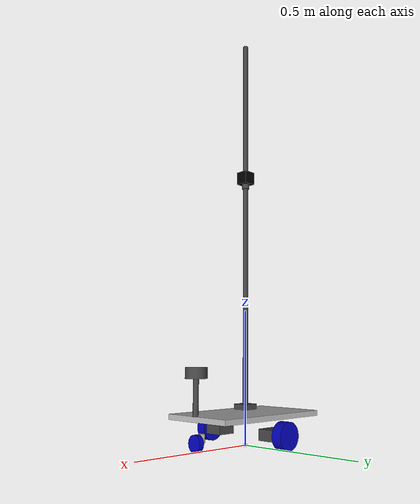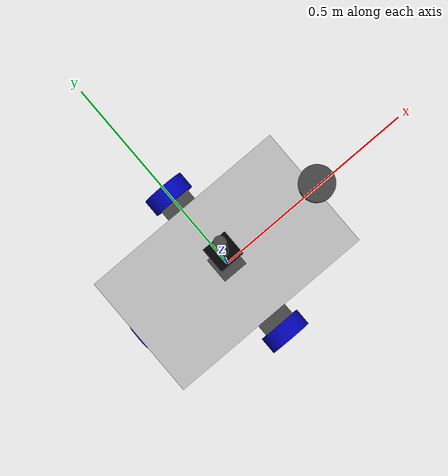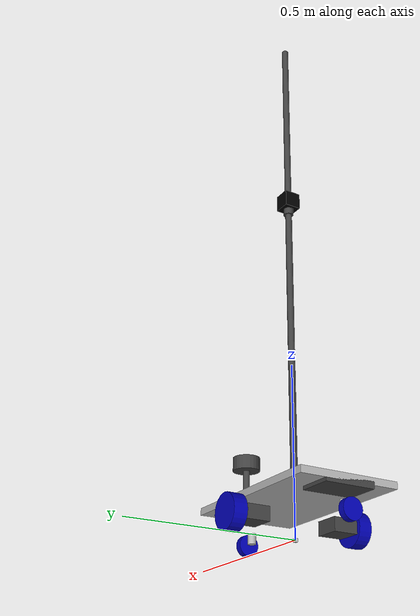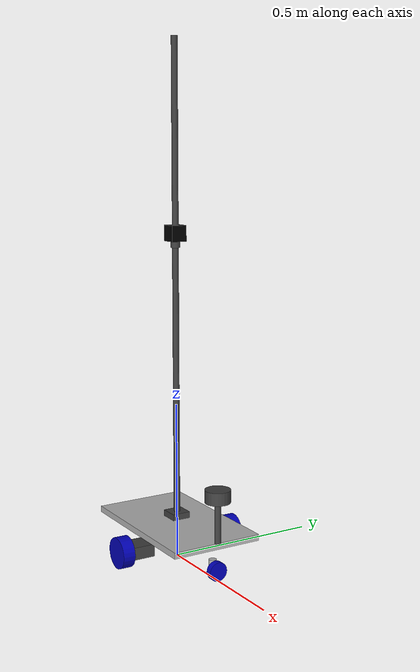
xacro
<?xml version="1.0" ?>
<robot name="scuttle" xmlns:xacro="http://www.ros.org/wiki/xacro">

<!-- Materials for URDF visualization -->
<material name="silver">
  <color rgba="0.700 0.700 0.700 1.000"/>
</material>

<material name="gray">
  <color rgba="0.250 0.250 0.250 1.000"/>
</material>

<material name="blue">
  <color rgba="0.000 0.000 0.700 1.000"/>
</material>

<material name="black">
  <color rgba="0.000 0.000 0.000 1.000"/>
</material>

<!-- Gazebo-specific materials using script references -->
<gazebo reference="base_link">
  <material>Gazebo/Grey</material>
  <mu1>0.2</mu1>
  <mu2>0.2</mu2>
  <gravity>true</gravity>
</gazebo>

<gazebo reference="chassis_link">
  <material>Gazebo/Grey</material>
  <mu1>0.2</mu1>
  <mu2>0.2</mu2>
</gazebo>

<gazebo reference="l_wheel">
  <material>Gazebo/Blue</material>
  <mu1>1.0</mu1>
  <mu2>1.0</mu2>
  <minDepth>0.005</minDepth>
  <kp>1000000.0</kp>
  <kd>100.0</kd>
</gazebo>

<gazebo reference="r_wheel">
  <material>Gazebo/Blue</material>
  <mu1>1.0</mu1>
  <mu2>1.0</mu2>
  <minDepth>0.005</minDepth>
  <kp>1000000.0</kp>
  <kd>100.0</kd>
</gazebo>

<gazebo reference="lidar_1">
  <material>Gazebo/DarkGrey</material>
  <mu1>0.2</mu1>
  <mu2>0.2</mu2>
</gazebo>

<gazebo reference="front_caster_swivel">
  <material>Gazebo/Grey</material>
  <mu1>0.5</mu1>
  <mu2>0.5</mu2>
</gazebo>

<gazebo reference="back_caster_swivel">
  <material>Gazebo/Grey</material>
  <mu1>0.5</mu1>
  <mu2>0.5</mu2>
</gazebo>

<gazebo reference="front_caster_wheel">
  <material>Gazebo/Blue</material>
  <mu1>0.2</mu1>
  <mu2>0.05</mu2>
  <minDepth>0.005</minDepth>
  <kp>1000000.0</kp>
  <kd>100.0</kd>
</gazebo>

<gazebo reference="back_caster_wheel">
  <material>Gazebo/Blue</material>
  <mu1>0.2</mu1>
  <mu2>0.05</mu2>
  <minDepth>0.005</minDepth>
  <kp>1000000.0</kp>
  <kd>100.0</kd>
</gazebo>

<gazebo reference="ballast_weight">
  <material>Gazebo/DarkGrey</material>
</gazebo>

<gazebo reference="lidar_mount">
  <material>Gazebo/DarkGrey</material>
</gazebo>

<gazebo reference="camera_mount_link">
  <material>Gazebo/DarkGrey</material>
</gazebo>

<gazebo reference="l_motor_mount">
  <material>Gazebo/DarkGrey</material>
</gazebo>

<gazebo reference="r_motor_mount">
  <material>Gazebo/DarkGrey</material>
</gazebo>

<gazebo reference="camera_stick_link">
  <material>Gazebo/DarkGrey</material>
</gazebo>

<gazebo reference="camera_slider_link">
  <material>Gazebo/DarkGrey</material>
</gazebo>

<gazebo reference="camera_link">
  <material>Gazebo/Black</material>
</gazebo>

<!-- Differential Drive Plugin for ROS2 -->
<gazebo>
  <plugin name="differential_drive_controller" filename="libgazebo_ros_diff_drive.so">
    <command_topic>cmd_vel</command_topic>
    <odometry_topic>odom</odometry_topic>
    <odometry_frame>odom</odometry_frame>
    <robot_base_frame>base_link</robot_base_frame>

    <update_rate>50</update_rate>
    <left_joint>l_wheel_joint</left_joint>
    <right_joint>r_wheel_joint</right_joint>

    <wheel_separation>0.395</wheel_separation>
    <wheel_diameter>0.10</wheel_diameter>

    <max_wheel_acceleration>1.0</max_wheel_acceleration>
    <max_wheel_torque>5.0</max_wheel_torque>

    <publish_odom>true</publish_odom>
    <publish_odom_tf>true</publish_odom_tf>
    <publish_wheel_tf>false</publish_wheel_tf>

    <!-- FIXED: Removed trailing space from "world " -->
    <odometry_source>world</odometry_source>
  </plugin>
</gazebo>

<!-- Joint State Publisher for ROS2 -->
<gazebo>
  <plugin name="joint_state_publisher" filename="libgazebo_ros_joint_state_publisher.so">
    <update_rate>50</update_rate>
    <joint_name>l_wheel_joint</joint_name>
    <joint_name>r_wheel_joint</joint_name>
    <joint_name>camera_slider_joint</joint_name>
  </plugin>
</gazebo>

<!-- Lidar Sensor for ROS2 -->
<gazebo reference="lidar_1">
  <sensor type="ray" name="rplidar_a1">
    <pose>0 0 0 0 0 0</pose>
    <visualize>true</visualize>
    <update_rate>5.5</update_rate>
    <ray>
      <scan>
        <horizontal>
          <samples>180</samples>
          <resolution>1</resolution>
          <min_angle>-1.5708</min_angle>
          <max_angle>1.5708</max_angle>
        </horizontal>
      </scan>
      <range>
        <min>0.15</min>
        <max>12.0</max>
        <resolution>0.005</resolution>
      </range>
      <noise>
        <type>gaussian</type>
        <mean>0.0</mean>
        <stddev>0.01</stddev>
      </noise>
    </ray>
    <plugin name="gazebo_ros_laser_controller" filename="libgazebo_ros_ray_sensor.so">
      <ros>
        <remapping>~/out:=scan</remapping>
      </ros>
      <frame_name>lidar_1</frame_name>
      <output_type>sensor_msgs/LaserScan</output_type>
    </plugin>
  </sensor>
</gazebo>

<!-- Camera for ROS2 -->
<gazebo reference="camera_link">
  <sensor type="camera" name="scuttle_camera">
    <always_on>1</always_on>
    <update_rate>30</update_rate>
    <visualize>false</visualize>

    <camera>
      <horizontal_fov>1.571</horizontal_fov>
      <image>
        <width>640</width>
        <height>480</height>
        <format>R8G8B8</format>
      </image>
      <clip>
        <near>0.05</near>
        <far>100.0</far>
      </clip>
    </camera>

    <plugin name="camera_controller" filename="libgazebo_ros_camera.so">
      <camera_name>camera</camera_name>
      <frame_name>camera_optical_frame</frame_name>
    </plugin>
  </sensor>
</gazebo>

<!-- Base link -->
<link name="base_link">
  <inertial>
    <origin rpy="0 0 0" xyz="0 0 0"/>
    <mass value="0.1"/>
    <inertia ixx="0.001" ixy="0.0" ixz="0.0"
             iyy="0.001" iyz="0.0"
             izz="0.001"/>
  </inertial>
  <visual>
    <origin rpy="0 0 0" xyz="0 0 0"/>
    <geometry>
      <box size="0.01 0.01 0.01"/>
    </geometry>
    <material name="silver"/>
  </visual>
</link>

<!-- Chassis -->
<joint name="chassis_joint" type="fixed">
  <origin rpy="0 0 0" xyz="0 0 0.11"/>
  <parent link="base_link"/>
  <child link="chassis_link"/>
</joint>

<link name="chassis_link">
  <inertial>
    <origin rpy="0 0 0" xyz="0 0 0"/>
    <mass value="2.0"/>
    <inertia ixx="0.0153" ixy="0.0" ixz="0.0"
             iyy="0.042" iyz="0.0"
             izz="0.0573"/>
  </inertial>
  <visual>
    <origin rpy="0 0 0" xyz="0 0 0"/>
    <geometry>
      <box size="0.50 0.30 0.02"/>
    </geometry>
    <material name="silver"/>
  </visual>
  <collision>
    <origin rpy="0 0 0" xyz="0 0 0"/>
    <geometry>
      <box size="0.50 0.30 0.02"/>
    </geometry>
  </collision>
</link>

<!-- Ballast weight -->
<joint name="ballast_joint" type="fixed">
  <origin rpy="0 0 0" xyz="-0.20 0 -0.01"/>
  <parent link="chassis_link"/>
  <child link="ballast_weight"/>
</joint>

<link name="ballast_weight">
  <inertial>
    <origin rpy="0 0 0" xyz="0 0 0"/>
    <mass value="0.05"/>
    <inertia ixx="0.00008" ixy="0.0" ixz="0.0"
             iyy="0.00013" iyz="0.0"
             izz="0.00008"/>
  </inertial>
  <visual>
    <origin rpy="0 0 0" xyz="0 0 0"/>
    <geometry>
      <box size="0.10 0.15 0.02"/>
    </geometry>
    <material name="gray"/>
  </visual>
  <collision>
    <origin rpy="0 0 0" xyz="0 0 0"/>
    <geometry>
      <box size="0.10 0.15 0.02"/>
    </geometry>
  </collision>
</link>

<!-- Camera base mount -->
<joint name="camera_mount_joint" type="fixed">
  <origin xyz="0 0 0.02" rpy="0 0 0"/>
  <parent link="chassis_link"/>
  <child link="camera_mount_link"/>
</joint>

<link name="camera_mount_link">
  <inertial>
    <origin xyz="0 0 0.01" rpy="0 0 0"/>
    <mass value="0.05"/>
    <inertia ixx="0.00002" ixy="0.0" ixz="0.0"
             iyy="0.00002" iyz="0.0"
             izz="0.00002"/>
  </inertial>
  <visual>
    <origin xyz="0 0 0.01" rpy="0 0 0"/>
    <geometry>
      <box size="0.06 0.06 0.02"/>
    </geometry>
    <material name="gray"/>
  </visual>
  <collision>
    <origin xyz="0 0 0.01" rpy="0 0 0"/>
    <geometry>
      <box size="0.06 0.06 0.02"/>
    </geometry>
  </collision>
</link>

<!-- Left motor mount -->
<joint name="l_motor_mount_joint" type="fixed">
  <origin rpy="0 0 0" xyz="0 0.1025 -0.06"/>
  <parent link="chassis_link"/>
  <child link="l_motor_mount"/>
</joint>

<link name="l_motor_mount">
  <inertial>
    <origin rpy="0 0 0" xyz="0 0.0375 0"/>
    <mass value="0.3"/>
    <inertia ixx="0.0001" ixy="0.0" ixz="0.0"
             iyy="0.00008" iyz="0.0"
             izz="0.00008"/>
  </inertial>
  <visual>
    <origin rpy="0 0 0" xyz="0 0.0375 0"/>
    <geometry>
      <box size="0.075 0.075 0.04"/>
    </geometry>
    <material name="gray"/>
  </visual>
  <collision>
    <origin rpy="0 0 0" xyz="0 0.0375 0"/>
    <geometry>
      <box size="0.075 0.075 0.04"/>
    </geometry>
  </collision>
</link>

<!-- Left wheel -->
<joint name="l_wheel_joint" type="continuous">
  <origin rpy="-1.5708 0 0" xyz="0 0.095 0"/>
  <parent link="l_motor_mount"/>
  <child link="l_wheel"/>
  <axis xyz="0 0 1"/>
  <dynamics damping="0.1" friction="0.1"/>
</joint>

<link name="l_wheel">
  <inertial>
    <origin rpy="0 0 0" xyz="0 0 0"/>
    <mass value="0.5"/>
    <inertia ixx="0.00125" ixy="0.0" ixz="0.0"
             iyy="0.00125" iyz="0.0"
             izz="0.00125"/>
  </inertial>
  <visual>
    <origin rpy="0 0 0" xyz="0 0 0"/>
    <geometry>
      <cylinder radius="0.05" length="0.04"/>
    </geometry>
    <material name="blue"/>
  </visual>
  <collision>
    <origin rpy="0 0 0" xyz="0 0 0"/>
    <geometry>
      <cylinder radius="0.05" length="0.04"/>
    </geometry>
  </collision>
</link>

<!-- Right motor mount -->
<joint name="r_motor_mount_joint" type="fixed">
  <origin rpy="0 0 0" xyz="0 -0.1025 -0.06"/>
  <parent link="chassis_link"/>
  <child link="r_motor_mount"/>
</joint>

<link name="r_motor_mount">
  <inertial>
    <origin rpy="0 0 0" xyz="0 -0.0375 0"/>
    <mass value="0.3"/>
    <inertia ixx="0.0001" ixy="0.0" ixz="0.0"
             iyy="0.00008" iyz="0.0"
             izz="0.00008"/>
  </inertial>
  <visual>
    <origin rpy="0 0 0" xyz="0 -0.0375 0"/>
    <geometry>
      <box size="0.075 0.075 0.04"/>
    </geometry>
    <material name="gray"/>
  </visual>
  <collision>
    <origin rpy="0 0 0" xyz="0 -0.0375 0"/>
    <geometry>
      <box size="0.075 0.075 0.04"/>
    </geometry>
  </collision>
</link>

<!-- Right wheel -->
<joint name="r_wheel_joint" type="continuous">
  <origin rpy="1.5708 0 0" xyz="0 -0.095 0"/>
  <parent link="r_motor_mount"/>
  <child link="r_wheel"/>
  <axis xyz="0 0 -1"/>
  <dynamics damping="0.1" friction="0.1"/>
</joint>

<link name="r_wheel">
  <inertial>
    <origin rpy="0 0 0" xyz="0 0 0"/>
    <mass value="0.5"/>
    <inertia ixx="0.00125" ixy="0.0" ixz="0.0"
             iyy="0.00125" iyz="0.0"
             izz="0.00125"/>
  </inertial>
  <visual>
    <origin rpy="0 0 0" xyz="0 0 0"/>
    <geometry>
      <cylinder radius="0.05" length="0.04"/>
    </geometry>
    <material name="blue"/>
  </visual>
  <collision>
    <origin rpy="0 0 0" xyz="0 0 0"/>
    <geometry>
      <cylinder radius="0.05" length="0.04"/>
    </geometry>
  </collision>
</link>

<!-- Front caster -->
<joint name="front_caster_swivel_joint" type="continuous">
  <origin rpy="0 0 0" xyz="0.22 0 -0.05"/>
  <parent link="chassis_link"/>
  <child link="front_caster_swivel"/>
  <axis xyz="0 0 1"/>
  <dynamics damping="0.01" friction="0.0"/>
</joint>

<link name="front_caster_swivel">
  <inertial>
    <origin rpy="0 0 0" xyz="0 0 -0.015"/>
    <mass value="0.05"/>
    <inertia ixx="1e-05" ixy="0.0" ixz="0.0"
             iyy="1.2e-05" iyz="0.0"
             izz="1e-05"/>
  </inertial>
  <visual>
    <origin rpy="0 0 0" xyz="0 0 -0.015"/>
    <geometry>
      <cylinder radius="0.012" length="0.03"/>
    </geometry>
    <material name="silver"/>
  </visual>
  <collision>
    <origin rpy="0 0 0" xyz="0 0 -0.015"/>
    <geometry>
      <cylinder radius="0.012" length="0.03"/>
    </geometry>
  </collision>
</link>

<joint name="front_caster_wheel_joint" type="continuous">
  <origin rpy="0 0 0" xyz="0.025 0 -0.03"/>
  <parent link="front_caster_swivel"/>
  <child link="front_caster_wheel"/>
  <axis xyz="0 1 0"/>
  <dynamics damping="0.01" friction="0.0"/>
</joint>

<link name="front_caster_wheel">
  <inertial>
    <origin rpy="0 0 0" xyz="0 0 0"/>
    <mass value="0.06"/>
    <inertia ixx="1.5e-05" ixy="0.0" ixz="0.0"
             iyy="9e-06" iyz="0.0"
             izz="9e-06"/>
  </inertial>
  <visual>
    <origin rpy="0 1.5708 0" xyz="0 0 0"/>
    <geometry>
      <cylinder radius="0.03" length="0.02"/>
    </geometry>
    <material name="blue"/>
  </visual>
  <collision>
    <origin rpy="0 1.5708 0" xyz="0 0 0"/>
    <geometry>
      <cylinder radius="0.03" length="0.02"/>
    </geometry>
  </collision>
</link>

<!-- Back caster -->
<joint name="back_caster_swivel_joint" type="continuous">
  <origin rpy="0 0 0" xyz="-0.22 0 -0.05"/>
  <parent link="chassis_link"/>
  <child link="back_caster_swivel"/>
  <axis xyz="0 0 1"/>
  <dynamics damping="0.01" friction="0.0"/>
</joint>

<link name="back_caster_swivel">
  <inertial>
    <origin rpy="0 0 0" xyz="0 0 -0.015"/>
    <mass value="0.05"/>
    <inertia ixx="1e-05" ixy="0.0" ixz="0.0"
             iyy="1.2e-05" iyz="0.0"
             izz="1e-05"/>
  </inertial>
  <visual>
    <origin rpy="0 0 0" xyz="0 0 -0.015"/>
    <geometry>
      <cylinder radius="0.012" length="0.03"/>
    </geometry>
    <material name="silver"/>
  </visual>
  <collision>
    <origin rpy="0 0 0" xyz="0 0 -0.015"/>
    <geometry>
      <cylinder radius="0.012" length="0.03"/>
    </geometry>
  </collision>
</link>

<joint name="back_caster_wheel_joint" type="continuous">
  <origin rpy="0 0 0" xyz="-0.025 0 -0.03"/>
  <parent link="back_caster_swivel"/>
  <child link="back_caster_wheel"/>
  <axis xyz="0 1 0"/>
  <dynamics damping="0.01" friction="0.0"/>
</joint>

<link name="back_caster_wheel">
  <inertial>
    <origin rpy="0 0 0" xyz="0 0 0"/>
    <mass value="0.06"/>
    <inertia ixx="1.5e-05" ixy="0.0" ixz="0.0"
             iyy="9e-06" iyz="0.0"
             izz="9e-06"/>
  </inertial>
  <visual>
    <origin rpy="0 1.5708 0" xyz="0 0 0"/>
    <geometry>
      <cylinder radius="0.03" length="0.02"/>
    </geometry>
    <material name="blue"/>
  </visual>
  <collision>
    <origin rpy="0 1.5708 0" xyz="0 0 0"/>
    <geometry>
      <cylinder radius="0.03" length="0.02"/>
    </geometry>
  </collision>
</link>

<!-- Lidar mount -->
<joint name="lidar_mount_joint" type="fixed">
  <origin rpy="0 0 0" xyz="0.25 0 0.01"/>
  <parent link="chassis_link"/>
  <child link="lidar_mount"/>
</joint>

<link name="lidar_mount">
  <inertial>
    <origin rpy="0 0 0" xyz="0 0 0.065"/>
    <mass value="0.08"/>
    <inertia ixx="0.00012" ixy="0.0" ixz="0.0"
             iyy="0.00012" iyz="0.0"
             izz="0.00001"/>
  </inertial>
  <visual>
    <origin rpy="0 0 0" xyz="0 0 0.065"/>
    <geometry>
      <cylinder radius="0.01" length="0.13"/>
    </geometry>
    <material name="gray"/>
  </visual>
  <collision>
    <origin rpy="0 0 0" xyz="0 0 0.065"/>
    <geometry>
      <cylinder radius="0.01" length="0.13"/>
    </geometry>
  </collision>
</link>

<joint name="lidar_joint" type="fixed">
  <origin rpy="0 0 0" xyz="0 0 0.13"/>
  <parent link="lidar_mount"/>
  <child link="lidar_1"/>
</joint>

<link name="lidar_1">
  <inertial>
    <origin rpy="0 0 0" xyz="0 0 0.02"/>
    <mass value="0.073"/>
    <inertia ixx="2.5e-05" ixy="0.0" ixz="0.0"
             iyy="2.5e-05" iyz="0.0"
             izz="4.4e-05"/>
  </inertial>
  <visual>
    <origin rpy="0 0 0" xyz="0 0 0.02"/>
    <geometry>
      <cylinder radius="0.04" length="0.04"/>
    </geometry>
    <material name="gray"/>
  </visual>
  <collision>
    <origin rpy="0 0 0" xyz="0 0 0.02"/>
    <geometry>
      <cylinder radius="0.04" length="0.04"/>
    </geometry>
  </collision>
</link>

<!-- Camera slider assembly -->
<joint name="camera_stick_joint" type="fixed">
  <origin xyz="0 0 0.01" rpy="0 0 0"/>
  <parent link="camera_mount_link"/>
  <child link="camera_stick_link"/>
</joint>

<link name="camera_stick_link">
  <inertial>
    <origin xyz="0 0 0.75" rpy="0 0 0"/>
    <mass value="0.1"/>
    <inertia ixx="0.00938" ixy="0.0" ixz="0.0"
             iyy="0.00938" iyz="0.0"
             izz="0.0001"/>
  </inertial>
  <visual>
    <origin xyz="0 0 0.75" rpy="0 0 0"/>
    <geometry>
      <cylinder length="1.50" radius="0.01"/>
    </geometry>
    <material name="gray"/>
  </visual>
  <collision>
    <origin xyz="0 0 0.75" rpy="0 0 0"/>
    <geometry>
      <cylinder length="1.50" radius="0.01"/>
    </geometry>
  </collision>
</link>

<joint name="camera_slider_joint" type="prismatic">
  <origin xyz="0 0 0.08" rpy="0 0 0"/>
  <parent link="camera_stick_link"/>
  <child link="camera_slider_link"/>
  <axis xyz="0 0 1"/>
  <limit lower="0.08" upper="1.5" effort="10.0" velocity="0.5"/>
  <dynamics damping="0.1" friction="0.5"/>
</joint>

<link name="camera_slider_link">
  <inertial>
    <origin xyz="0 0 0" rpy="0 0 0"/>
    <mass value="0.01"/>
    <inertia ixx="0.000001" ixy="0.0" ixz="0.0"
             iyy="0.000001" iyz="0.0"
             izz="0.000001"/>
  </inertial>
  <visual>
    <origin xyz="0 0 0" rpy="0 0 0"/>
    <geometry>
      <cylinder length="0.02" radius="0.015"/>
    </geometry>
    <material name="gray"/>
  </visual>
  <collision>
    <origin xyz="0 0 0" rpy="0 0 0"/>
    <geometry>
      <cylinder length="0.02" radius="0.015"/>
    </geometry>
  </collision>
</link>

<joint name="camera_on_slider_joint" type="fixed">
  <origin xyz="0 0 0.01" rpy="0 0 0"/>
  <parent link="camera_slider_link"/>
  <child link="camera_link"/>
</joint>

<link name="camera_link">
  <inertial>
    <origin xyz="0 0 0.025" rpy="0 0 0"/>
    <mass value="0.02"/>
    <inertia ixx="0.00002" ixy="0.0" ixz="0.0"
             iyy="0.00002" iyz="0.0"
             izz="0.00002"/>
  </inertial>
  <visual>
    <origin xyz="0 0 0.025" rpy="0 0 0"/>
    <geometry>
      <box size="0.05 0.05 0.05"/>
    </geometry>
    <material name="black"/>
  </visual>
  <collision>
    <origin xyz="0 0 0.025" rpy="0 0 0"/>
    <geometry>
      <box size="0.05 0.05 0.05"/>
    </geometry>
  </collision>
</link>

<link name="camera_optical_frame"/>
<joint name="camera_optical_joint" type="fixed">
  <origin xyz="0 0 0.05" rpy="-1.5708 0 -1.5708"/>
  <parent link="camera_link"/>
  <child link="camera_optical_frame"/>
</joint>

</robot>
